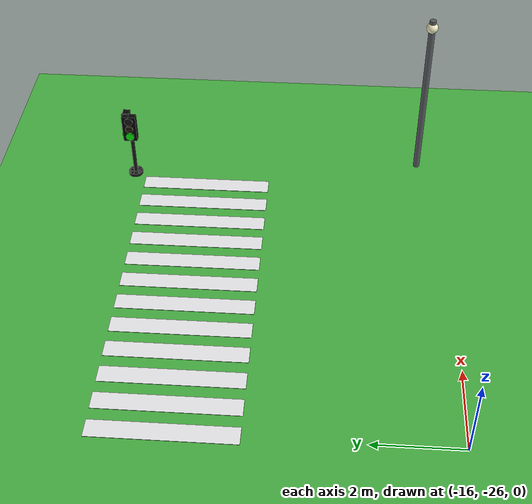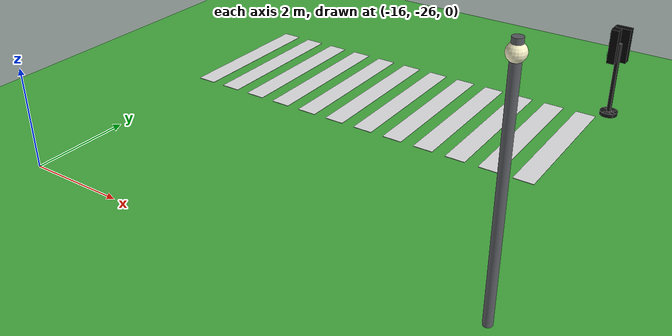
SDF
<sdf version="1.10">
 <world name="city_second">
  <model name="ground_plane">
   <static>true</static>
   <link name="link">
    <collision name="collision">
     <geometry><plane><normal>0 0 1</normal><size>300 300</size></plane></geometry>
    </collision>
    <visual name="visual">
     <geometry><plane><normal>0 0 1</normal><size>300 300</size></plane></geometry>
     <material>
      <ambient>0.280000001 0.689999998 0.25999999 1</ambient>
      <diffuse>0.280000001 0.689999998 0.25999999 1</diffuse>
      <specular>0.0299999993 0.0299999993 0.0299999993 1</specular>
     </material>
    </visual>
    <inertial>
     <mass>1</mass>
     <inertia><ixx>1</ixx><ixy>0</ixy><ixz>0</ixz><iyy>1</iyy><iyz>0</iyz><izz>1</izz></inertia>
    </inertial>
   </link>
  </model>
  <model name="crosswalk_h_1_1_south_7_3">
   <static>true</static>
   <pose>-12.1189 -19.828700000000001 0.017000000000000001 0 0 0</pose>
   <link name="stripe_1">
    <collision name="collision">
     <geometry><box><size>0.41999999999999998 3.2000000000000002 0.01</size></box></geometry>
    </collision>
    <visual name="visual">
     <geometry><box><size>0.41999999999999998 3.2000000000000002 0.01</size></box></geometry>
     <material>
      <ambient>0.920000017 0.920000017 0.930000007 1</ambient>
      <diffuse>0.920000017 0.920000017 0.930000007 1</diffuse>
      <specular>0.0299999993 0.0299999993 0.0299999993 1</specular>
     </material>
    </visual>
    <pose>-3.8500000000000001 0 0 0 0 0</pose>
    <inertial>
     <mass>1</mass>
     <inertia><ixx>1</ixx><ixy>0</ixy><ixz>0</ixz><iyy>1</iyy><iyz>0</iyz><izz>1</izz></inertia>
    </inertial>
   </link>
   <link name="stripe_2">
    <collision name="collision">
     <geometry><box><size>0.41999999999999998 3.2000000000000002 0.01</size></box></geometry>
    </collision>
    <visual name="visual">
     <geometry><box><size>0.41999999999999998 3.2000000000000002 0.01</size></box></geometry>
     <material>
      <ambient>0.920000017 0.920000017 0.930000007 1</ambient>
      <diffuse>0.920000017 0.920000017 0.930000007 1</diffuse>
      <specular>0.0299999993 0.0299999993 0.0299999993 1</specular>
     </material>
    </visual>
    <pose>-3.1500000000000004 0 0 0 0 0</pose>
    <inertial>
     <mass>1</mass>
     <inertia><ixx>1</ixx><ixy>0</ixy><ixz>0</ixz><iyy>1</iyy><iyz>0</iyz><izz>1</izz></inertia>
    </inertial>
   </link>
   <link name="stripe_3">
    <collision name="collision">
     <geometry><box><size>0.41999999999999998 3.2000000000000002 0.01</size></box></geometry>
    </collision>
    <visual name="visual">
     <geometry><box><size>0.41999999999999998 3.2000000000000002 0.01</size></box></geometry>
     <material>
      <ambient>0.920000017 0.920000017 0.930000007 1</ambient>
      <diffuse>0.920000017 0.920000017 0.930000007 1</diffuse>
      <specular>0.0299999993 0.0299999993 0.0299999993 1</specular>
     </material>
    </visual>
    <pose>-2.4499999999999993 0 0 0 0 0</pose>
    <inertial>
     <mass>1</mass>
     <inertia><ixx>1</ixx><ixy>0</ixy><ixz>0</ixz><iyy>1</iyy><iyz>0</iyz><izz>1</izz></inertia>
    </inertial>
   </link>
   <link name="stripe_4">
    <collision name="collision">
     <geometry><box><size>0.41999999999999998 3.2000000000000002 0.01</size></box></geometry>
    </collision>
    <visual name="visual">
     <geometry><box><size>0.41999999999999998 3.2000000000000002 0.01</size></box></geometry>
     <material>
      <ambient>0.920000017 0.920000017 0.930000007 1</ambient>
      <diffuse>0.920000017 0.920000017 0.930000007 1</diffuse>
      <specular>0.0299999993 0.0299999993 0.0299999993 1</specular>
     </material>
    </visual>
    <pose>-1.75 0 0 0 0 0</pose>
    <inertial>
     <mass>1</mass>
     <inertia><ixx>1</ixx><ixy>0</ixy><ixz>0</ixz><iyy>1</iyy><iyz>0</iyz><izz>1</izz></inertia>
    </inertial>
   </link>
   <link name="stripe_5">
    <collision name="collision">
     <geometry><box><size>0.41999999999999998 3.2000000000000002 0.01</size></box></geometry>
    </collision>
    <visual name="visual">
     <geometry><box><size>0.41999999999999998 3.2000000000000002 0.01</size></box></geometry>
     <material>
      <ambient>0.920000017 0.920000017 0.930000007 1</ambient>
      <diffuse>0.920000017 0.920000017 0.930000007 1</diffuse>
      <specular>0.0299999993 0.0299999993 0.0299999993 1</specular>
     </material>
    </visual>
    <pose>-1.0500000000000007 0 0 0 0 0</pose>
    <inertial>
     <mass>1</mass>
     <inertia><ixx>1</ixx><ixy>0</ixy><ixz>0</ixz><iyy>1</iyy><iyz>0</iyz><izz>1</izz></inertia>
    </inertial>
   </link>
   <link name="stripe_6">
    <collision name="collision">
     <geometry><box><size>0.41999999999999998 3.2000000000000002 0.01</size></box></geometry>
    </collision>
    <visual name="visual">
     <geometry><box><size>0.41999999999999998 3.2000000000000002 0.01</size></box></geometry>
     <material>
      <ambient>0.920000017 0.920000017 0.930000007 1</ambient>
      <diffuse>0.920000017 0.920000017 0.930000007 1</diffuse>
      <specular>0.0299999993 0.0299999993 0.0299999993 1</specular>
     </material>
    </visual>
    <pose>-0.34999999999999964 0 0 0 0 0</pose>
    <inertial>
     <mass>1</mass>
     <inertia><ixx>1</ixx><ixy>0</ixy><ixz>0</ixz><iyy>1</iyy><iyz>0</iyz><izz>1</izz></inertia>
    </inertial>
   </link>
   <link name="stripe_7">
    <collision name="collision">
     <geometry><box><size>0.41999999999999998 3.2000000000000002 0.01</size></box></geometry>
    </collision>
    <visual name="visual">
     <geometry><box><size>0.41999999999999998 3.2000000000000002 0.01</size></box></geometry>
     <material>
      <ambient>0.920000017 0.920000017 0.930000007 1</ambient>
      <diffuse>0.920000017 0.920000017 0.930000007 1</diffuse>
      <specular>0.0299999993 0.0299999993 0.0299999993 1</specular>
     </material>
    </visual>
    <pose>0.34999999999999964 0 0 0 0 0</pose>
    <inertial>
     <mass>1</mass>
     <inertia><ixx>1</ixx><ixy>0</ixy><ixz>0</ixz><iyy>1</iyy><iyz>0</iyz><izz>1</izz></inertia>
    </inertial>
   </link>
   <link name="stripe_8">
    <collision name="collision">
     <geometry><box><size>0.41999999999999998 3.2000000000000002 0.01</size></box></geometry>
    </collision>
    <visual name="visual">
     <geometry><box><size>0.41999999999999998 3.2000000000000002 0.01</size></box></geometry>
     <material>
      <ambient>0.920000017 0.920000017 0.930000007 1</ambient>
      <diffuse>0.920000017 0.920000017 0.930000007 1</diffuse>
      <specular>0.0299999993 0.0299999993 0.0299999993 1</specular>
     </material>
    </visual>
    <pose>1.0500000000000007 0 0 0 0 0</pose>
    <inertial>
     <mass>1</mass>
     <inertia><ixx>1</ixx><ixy>0</ixy><ixz>0</ixz><iyy>1</iyy><iyz>0</iyz><izz>1</izz></inertia>
    </inertial>
   </link>
   <link name="stripe_9">
    <collision name="collision">
     <geometry><box><size>0.41999999999999998 3.2000000000000002 0.01</size></box></geometry>
    </collision>
    <visual name="visual">
     <geometry><box><size>0.41999999999999998 3.2000000000000002 0.01</size></box></geometry>
     <material>
      <ambient>0.920000017 0.920000017 0.930000007 1</ambient>
      <diffuse>0.920000017 0.920000017 0.930000007 1</diffuse>
      <specular>0.0299999993 0.0299999993 0.0299999993 1</specular>
     </material>
    </visual>
    <pose>1.75 0 0 0 0 0</pose>
    <inertial>
     <mass>1</mass>
     <inertia><ixx>1</ixx><ixy>0</ixy><ixz>0</ixz><iyy>1</iyy><iyz>0</iyz><izz>1</izz></inertia>
    </inertial>
   </link>
   <link name="stripe_10">
    <collision name="collision">
     <geometry><box><size>0.41999999999999998 3.2000000000000002 0.01</size></box></geometry>
    </collision>
    <visual name="visual">
     <geometry><box><size>0.41999999999999998 3.2000000000000002 0.01</size></box></geometry>
     <material>
      <ambient>0.920000017 0.920000017 0.930000007 1</ambient>
      <diffuse>0.920000017 0.920000017 0.930000007 1</diffuse>
      <specular>0.0299999993 0.0299999993 0.0299999993 1</specular>
     </material>
    </visual>
    <pose>2.4499999999999993 0 0 0 0 0</pose>
    <inertial>
     <mass>1</mass>
     <inertia><ixx>1</ixx><ixy>0</ixy><ixz>0</ixz><iyy>1</iyy><iyz>0</iyz><izz>1</izz></inertia>
    </inertial>
   </link>
   <link name="stripe_11">
    <collision name="collision">
     <geometry><box><size>0.41999999999999998 3.2000000000000002 0.01</size></box></geometry>
    </collision>
    <visual name="visual">
     <geometry><box><size>0.41999999999999998 3.2000000000000002 0.01</size></box></geometry>
     <material>
      <ambient>0.920000017 0.920000017 0.930000007 1</ambient>
      <diffuse>0.920000017 0.920000017 0.930000007 1</diffuse>
      <specular>0.0299999993 0.0299999993 0.0299999993 1</specular>
     </material>
    </visual>
    <pose>3.1500000000000004 0 0 0 0 0</pose>
    <inertial>
     <mass>1</mass>
     <inertia><ixx>1</ixx><ixy>0</ixy><ixz>0</ixz><iyy>1</iyy><iyz>0</iyz><izz>1</izz></inertia>
    </inertial>
   </link>
   <link name="stripe_12">
    <collision name="collision">
     <geometry><box><size>0.41999999999999998 3.2000000000000002 0.01</size></box></geometry>
    </collision>
    <visual name="visual">
     <geometry><box><size>0.41999999999999998 3.2000000000000002 0.01</size></box></geometry>
     <material>
      <ambient>0.920000017 0.920000017 0.930000007 1</ambient>
      <diffuse>0.920000017 0.920000017 0.930000007 1</diffuse>
      <specular>0.0299999993 0.0299999993 0.0299999993 1</specular>
     </material>
    </visual>
    <pose>3.8499999999999996 0 0 0 0 0</pose>
    <inertial>
     <mass>1</mass>
     <inertia><ixx>1</ixx><ixy>0</ixy><ixz>0</ixz><iyy>1</iyy><iyz>0</iyz><izz>1</izz></inertia>
    </inertial>
   </link>
  </model>
  <model name="lamp_1_2_4">
   <static>true</static>
   <pose>-7.1247800000000003 -25.261600000000001 2.2000000000000002 0 0 0</pose>
   <link name="link">
    <collision name="collision">
     <geometry>
      <cylinder><radius>0.080000000000000002</radius><length>4.4000000000000004</length></cylinder>
     </geometry>
    </collision>
    <visual name="pole">
     <geometry>
      <cylinder><radius>0.080000000000000002</radius><length>4.4000000000000004</length></cylinder>
     </geometry>
     <material>
      <ambient>0.349999994 0.360000014 0.379999995 1</ambient>
      <diffuse>0.349999994 0.360000014 0.379999995 1</diffuse>
      <specular>0.0299999993 0.0299999993 0.0299999993 1</specular>
     </material>
    </visual>
    <visual name="lamp_head">
     <pose>0 0 2 0 0 0</pose>
     <geometry><sphere><radius>0.14000000000000001</radius></sphere></geometry>
     <material>
      <ambient>0.959999979 0.939999998 0.779999971 1</ambient>
      <diffuse>0.959999979 0.939999998 0.779999971 1</diffuse>
      <specular>0.0299999993 0.0299999993 0.0299999993 1</specular>
     </material>
    </visual>
    <inertial>
     <mass>1</mass>
     <inertia><ixx>1</ixx><ixy>0</ixy><ixz>0</ixz><iyy>1</iyy><iyz>0</iyz><izz>1</izz></inertia>
    </inertial>
   </link>
  </model>
  <model name="simple_traffic_light_green_north_1_1">
   <static>true</static>
   <pose>-7.892690759823056 -17.934411539396873 0 0 0 0</pose>
   <link name="base">
    <pose>0 0 0.040000000000000001 0 0 0</pose>
    <collision name="collision">
     <geometry>
      <cylinder><radius>0.17999999999999999</radius><length>0.080000000000000002</length></cylinder>
     </geometry>
    </collision>
    <visual name="visual">
     <geometry>
      <cylinder><radius>0.17999999999999999</radius><length>0.080000000000000002</length></cylinder>
     </geometry>
     <material>
      <ambient>0.0799999982 0.0799999982 0.0799999982 1</ambient>
      <diffuse>0.0799999982 0.0799999982 0.0799999982 1</diffuse>
      <specular>0.150000006 0.150000006 0.150000006 1</specular>
      <emissive>0 0 0 1</emissive>
     </material>
    </visual>
    <inertial>
     <mass>1</mass>
     <inertia><ixx>1</ixx><ixy>0</ixy><ixz>0</ixz><iyy>1</iyy><iyz>0</iyz><izz>1</izz></inertia>
    </inertial>
   </link>
   <link name="pole">
    <pose>0 0 0.80000000000000004 0 0 0</pose>
    <collision name="collision">
     <geometry>
      <cylinder><radius>0.044999999999999998</radius><length>1.6000000000000001</length></cylinder>
     </geometry>
    </collision>
    <visual name="visual">
     <geometry>
      <cylinder><radius>0.044999999999999998</radius><length>1.6000000000000001</length></cylinder>
     </geometry>
     <material>
      <ambient>0.0799999982 0.0799999982 0.0799999982 1</ambient>
      <diffuse>0.0799999982 0.0799999982 0.0799999982 1</diffuse>
      <specular>0.150000006 0.150000006 0.150000006 1</specular>
      <emissive>0 0 0 1</emissive>
     </material>
    </visual>
    <inertial>
     <mass>1</mass>
     <inertia><ixx>1</ixx><ixy>0</ixy><ixz>0</ixz><iyy>1</iyy><iyz>0</iyz><izz>1</izz></inertia>
    </inertial>
   </link>
   <link name="signal_box">
    <pose>0 0.089999999999999858 1.55 0 0 0</pose>
    <collision name="collision">
     <geometry><box><size>0.34000000000000002 0.16 0.71999999999999997</size></box></geometry>
    </collision>
    <visual name="visual">
     <geometry><box><size>0.34000000000000002 0.16 0.71999999999999997</size></box></geometry>
     <material>
      <ambient>0.0199999996 0.0199999996 0.0199999996 1</ambient>
      <diffuse>0.0199999996 0.0199999996 0.0199999996 1</diffuse>
      <specular>0.150000006 0.150000006 0.150000006 1</specular>
      <emissive>0 0 0 1</emissive>
     </material>
    </visual>
    <inertial>
     <mass>1</mass>
     <inertia><ixx>1</ixx><ixy>0</ixy><ixz>0</ixz><iyy>1</iyy><iyz>0</iyz><izz>1</izz></inertia>
    </inertial>
   </link>
   <link name="red_lens">
    <pose>0 0.18100000000000094 1.78 1.5707963268000003 0 0</pose>
    <collision name="collision">
     <geometry><cylinder><radius>0.105</radius><length>0.035000000000000003</length></cylinder></geometry>
    </collision>
    <visual name="visual">
     <geometry><cylinder><radius>0.105</radius><length>0.035000000000000003</length></cylinder></geometry>
     <material>
      <ambient>0.0799999982 0.0799999982 0.0799999982 1</ambient>
      <diffuse>0.0799999982 0.0799999982 0.0799999982 1</diffuse>
      <specular>0.150000006 0.150000006 0.150000006 1</specular>
      <emissive>0 0 0 1</emissive>
     </material>
    </visual>
    <inertial>
     <mass>1</mass>
     <inertia><ixx>1</ixx><ixy>0</ixy><ixz>0</ixz><iyy>1</iyy><iyz>0</iyz><izz>1</izz></inertia>
    </inertial>
   </link>
   <link name="yellow_lens">
    <pose>0 0.18199999999999861 1.55 1.5707963268000003 0 0</pose>
    <collision name="collision">
     <geometry>
      <cylinder><radius>0.095000000000000001</radius><length>0.035000000000000003</length></cylinder>
     </geometry>
    </collision>
    <visual name="visual">
     <geometry>
      <cylinder><radius>0.095000000000000001</radius><length>0.035000000000000003</length></cylinder>
     </geometry>
     <material>
      <ambient>0.119999997 0.100000001 0.0199999996 1</ambient>
      <diffuse>0.119999997 0.100000001 0.0199999996 1</diffuse>
      <specular>0.150000006 0.150000006 0.150000006 1</specular>
      <emissive>0 0 0 1</emissive>
     </material>
    </visual>
    <inertial>
     <mass>1</mass>
     <inertia><ixx>1</ixx><ixy>0</ixy><ixz>0</ixz><iyy>1</iyy><iyz>0</iyz><izz>1</izz></inertia>
    </inertial>
   </link>
   <link name="green_lens">
    <pose>0 0.18299999999999983 1.3200000000000001 1.5707963268000003 0 0</pose>
    <collision name="collision">
     <geometry><cylinder><radius>0.105</radius><length>0.035000000000000003</length></cylinder></geometry>
    </collision>
    <visual name="visual">
     <geometry><cylinder><radius>0.105</radius><length>0.035000000000000003</length></cylinder></geometry>
     <material>
      <ambient>0.0199999996 1 0.0199999996 1</ambient>
      <diffuse>0.0199999996 1 0.0199999996 1</diffuse>
      <specular>0.150000006 0.150000006 0.150000006 1</specular>
      <emissive>0.0199999996 1 0.0199999996 1</emissive>
     </material>
    </visual>
    <inertial>
     <mass>1</mass>
     <inertia><ixx>1</ixx><ixy>0</ixy><ixz>0</ixz><iyy>1</iyy><iyz>0</iyz><izz>1</izz></inertia>
    </inertial>
   </link>
  </model>
  <model name="simple_traffic_light_green_west_1_1">
   <static>true</static>
   <pose>-7.8903706909818361 -17.93204356425986 -2.0816681711721685e-17 0 0 1.5707999672671711</pose>
   <link name="base">
    <pose>0 0 0.040000000000000001 0 0 0</pose>
    <collision name="collision">
     <geometry>
      <cylinder><radius>0.17999999999999999</radius><length>0.080000000000000002</length></cylinder>
     </geometry>
    </collision>
    <visual name="visual">
     <geometry>
      <cylinder><radius>0.17999999999999999</radius><length>0.080000000000000002</length></cylinder>
     </geometry>
     <material>
      <ambient>0.0799999982 0.0799999982 0.0799999982 1</ambient>
      <diffuse>0.0799999982 0.0799999982 0.0799999982 1</diffuse>
      <specular>0.150000006 0.150000006 0.150000006 1</specular>
      <emissive>0 0 0 1</emissive>
     </material>
    </visual>
    <inertial>
     <mass>1</mass>
     <inertia><ixx>1</ixx><ixy>0</ixy><ixz>0</ixz><iyy>1</iyy><iyz>0</iyz><izz>1</izz></inertia>
    </inertial>
   </link>
   <link name="pole">
    <pose>-3.5527136788005009e-15 6.2172489379008766e-15 0.80000000000000004 0 0 3.3306690738754696e-16</pose>
    <collision name="collision">
     <geometry>
      <cylinder><radius>0.044999999999999998</radius><length>1.6000000000000001</length></cylinder>
     </geometry>
    </collision>
    <visual name="visual">
     <geometry>
      <cylinder><radius>0.044999999999999998</radius><length>1.6000000000000001</length></cylinder>
     </geometry>
     <material>
      <ambient>0.0799999982 0.0799999982 0.0799999982 1</ambient>
      <diffuse>0.0799999982 0.0799999982 0.0799999982 1</diffuse>
      <specular>0.150000006 0.150000006 0.150000006 1</specular>
      <emissive>0 0 0 1</emissive>
     </material>
    </visual>
    <inertial>
     <mass>1</mass>
     <inertia><ixx>1</ixx><ixy>0</ixy><ixz>0</ixz><iyy>1</iyy><iyz>0</iyz><izz>1</izz></inertia>
    </inertial>
   </link>
   <link name="signal_box">
    <pose>0 0.090000000000006963 1.55 0 0 3.3306690738754696e-16</pose>
    <collision name="collision">
     <geometry><box><size>0.34000000000000002 0.16 0.71999999999999997</size></box></geometry>
    </collision>
    <visual name="visual">
     <geometry><box><size>0.34000000000000002 0.16 0.71999999999999997</size></box></geometry>
     <material>
      <ambient>0.0199999996 0.0199999996 0.0199999996 1</ambient>
      <diffuse>0.0199999996 0.0199999996 0.0199999996 1</diffuse>
      <specular>0.150000006 0.150000006 0.150000006 1</specular>
      <emissive>0 0 0 1</emissive>
     </material>
    </visual>
    <inertial>
     <mass>1</mass>
     <inertia><ixx>1</ixx><ixy>0</ixy><ixz>0</ixz><iyy>1</iyy><iyz>0</iyz><izz>1</izz></inertia>
    </inertial>
   </link>
   <link name="red_lens">
    <pose>0 0.18100000000000271 1.78 1.5707963267999998 2.355138688059715e-16 -1.3345785898806078e-15</pose>
    <collision name="collision">
     <geometry><cylinder><radius>0.105</radius><length>0.035000000000000003</length></cylinder></geometry>
    </collision>
    <visual name="visual">
     <geometry><cylinder><radius>0.105</radius><length>0.035000000000000003</length></cylinder></geometry>
     <material>
      <ambient>0.0799999982 0.0799999982 0.0799999982 1</ambient>
      <diffuse>0.0799999982 0.0799999982 0.0799999982 1</diffuse>
      <specular>0.150000006 0.150000006 0.150000006 1</specular>
      <emissive>0 0 0 1</emissive>
     </material>
    </visual>
    <inertial>
     <mass>1</mass>
     <inertia><ixx>1</ixx><ixy>0</ixy><ixz>0</ixz><iyy>1</iyy><iyz>0</iyz><izz>1</izz></inertia>
    </inertial>
   </link>
   <link name="yellow_lens">
    <pose>0 0.18200000000000749 1.55 1.5707963267999998 2.355138688059715e-16 -1.3345785898806078e-15</pose>
    <collision name="collision">
     <geometry>
      <cylinder><radius>0.095000000000000001</radius><length>0.035000000000000003</length></cylinder>
     </geometry>
    </collision>
    <visual name="visual">
     <geometry>
      <cylinder><radius>0.095000000000000001</radius><length>0.035000000000000003</length></cylinder>
     </geometry>
     <material>
      <ambient>0.119999997 0.100000001 0.0199999996 1</ambient>
      <diffuse>0.119999997 0.100000001 0.0199999996 1</diffuse>
      <specular>0.150000006 0.150000006 0.150000006 1</specular>
      <emissive>0 0 0 1</emissive>
     </material>
    </visual>
    <inertial>
     <mass>1</mass>
     <inertia><ixx>1</ixx><ixy>0</ixy><ixz>0</ixz><iyy>1</iyy><iyz>0</iyz><izz>1</izz></inertia>
    </inertial>
   </link>
   <link name="green_lens">
    <pose>0 0.18300000000000693 1.3200000000000003 1.5707963267999998 2.355138688059715e-16 -1.3345785898806078e-15</pose>
    <collision name="collision">
     <geometry><cylinder><radius>0.105</radius><length>0.035000000000000003</length></cylinder></geometry>
    </collision>
    <visual name="visual">
     <geometry><cylinder><radius>0.105</radius><length>0.035000000000000003</length></cylinder></geometry>
     <material>
      <ambient>0.0199999996 1 0.0199999996 1</ambient>
      <diffuse>0.0199999996 1 0.0199999996 1</diffuse>
      <specular>0.150000006 0.150000006 0.150000006 1</specular>
      <emissive>0.0199999996 1 0.0199999996 1</emissive>
     </material>
    </visual>
    <inertial>
     <mass>1</mass>
     <inertia><ixx>1</ixx><ixy>0</ixy><ixz>0</ixz><iyy>1</iyy><iyz>0</iyz><izz>1</izz></inertia>
    </inertial>
   </link>
  </model>
 </world>
</sdf>
